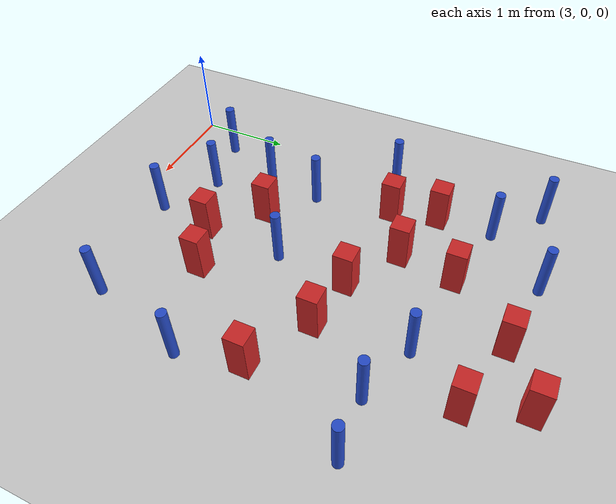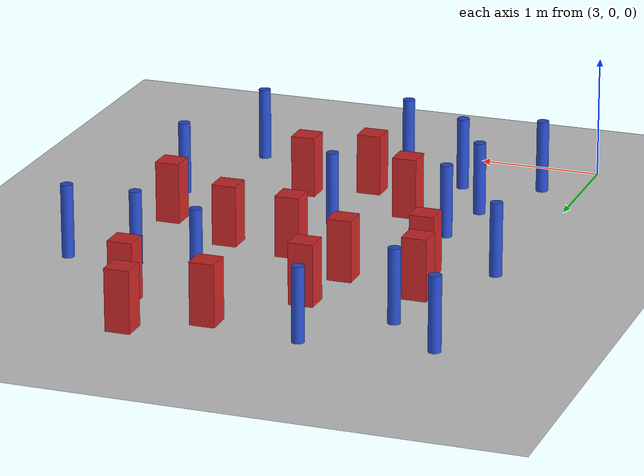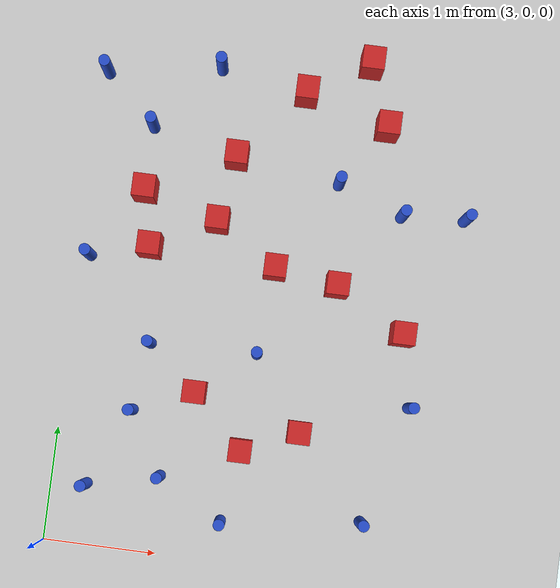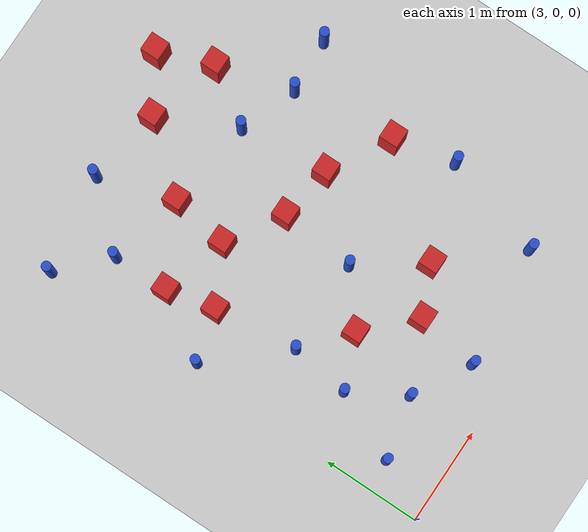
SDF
<sdf version="1.6">
 <world name="default">
  <model name="ground_plane">
   <static>1</static>
   <link name="link">
    <collision name="collision">
     <geometry><plane><normal>0 0 1</normal><size>100 100</size></plane></geometry>
     <surface><friction><ode><mu>100</mu><mu2>50</mu2></ode></friction></surface>
    </collision>
    <visual name="visual">
     <cast_shadows>0</cast_shadows>
     <geometry><plane><normal>0 0 1</normal><size>100 100</size></plane></geometry>
     <material>
      <ambient>1.0 1.0 1.0 1.0</ambient>
      <diffuse>0.8 0.8 0.8 1.0</diffuse>
      <specular>0.01 0.01 0.01 1.000000</specular>
     </material>
    </visual>
   </link>
  </model>
  <model name="pole_obstacle0">
   <static>true</static>
   <pose>5.79565178209 3.24629329432 7.38925637345e-09 -8.47170692798e-08 1.24976764937e-08 -1.74513093023e-07</pose>
   <link name="link">
    <pose>0 0 0.3 0 -0 0</pose>
    <inertial>
     <mass>1</mass>
     <inertia><ixx>0.145833</ixx><ixy>0</ixy><ixz>0</ixz><iyy>0.145833</iyy><iyz>0</iyz><izz>0.125</izz></inertia>
    </inertial>
    <collision name="collision">
     <geometry><cylinder><radius>0.05</radius><length>.6</length></cylinder></geometry>
    </collision>
    <visual name="visual">
     <geometry><cylinder><radius>0.05</radius><length>.6</length></cylinder></geometry>
     <material>
      <script><name>Gazebo/Blue</name><uri>file://media/materials/scripts/gazebo.material</uri></script>
     </material>
    </visual>
   </link>
  </model>
  <model name="square_post_obstacle17">
   <static>true</static>
   <pose>5.35984486681 4.55833261002 1.91545236811e-07 -7.35059704564e-06 1.12565212e-07 2.39332434364e-05</pose>
   <link name="link">
    <pose>0 0 0.25 0 -0 0</pose>
    <inertial>
     <mass>100</mass>
     <inertia>
      <ixx>0.166667</ixx>
      <ixy>0</ixy>
      <ixz>0</ixz>
      <iyy>0.166667</iyy>
      <iyz>0</iyz>
      <izz>0.166667</izz>
     </inertia>
    </inertial>
    <collision name="collision"><geometry><box><size>.2 .2 .5</size></box></geometry></collision>
    <visual name="visual">
     <geometry><box><size>.2 .2 .5</size></box></geometry>
     <material>
      <script><name>Gazebo/Red</name><uri>file://media/materials/scripts/gazebo.material</uri></script>
     </material>
    </visual>
   </link>
  </model>
  <model name="pole_obstacle40">
   <static>true</static>
   <pose>6.35808091005 3.28109023277 7.38925637345e-09 -8.47170692798e-08 1.24976764937e-08 -1.74513093023e-07</pose>
   <link name="link">
    <pose>0 0 0.3 0 -0 0</pose>
    <inertial>
     <mass>1</mass>
     <inertia><ixx>0.145833</ixx><ixy>0</ixy><ixz>0</ixz><iyy>0.145833</iyy><iyz>0</iyz><izz>0.125</izz></inertia>
    </inertial>
    <collision name="collision">
     <geometry><cylinder><radius>0.05</radius><length>.6</length></cylinder></geometry>
    </collision>
    <visual name="visual">
     <geometry><cylinder><radius>0.05</radius><length>.6</length></cylinder></geometry>
     <material>
      <script><name>Gazebo/Blue</name><uri>file://media/materials/scripts/gazebo.material</uri></script>
     </material>
    </visual>
   </link>
  </model>
  <model name="pole_obstacle46">
   <static>true</static>
   <pose>4.03932747048 4.36891801935 7.38925637345e-09 -8.47170692796e-08 1.24976764793e-08 -1.74513093032e-07</pose>
   <link name="link">
    <pose>0 0 0.3 0 -0 0</pose>
    <inertial>
     <mass>1</mass>
     <inertia><ixx>0.145833</ixx><ixy>0</ixy><ixz>0</ixz><iyy>0.145833</iyy><iyz>0</iyz><izz>0.125</izz></inertia>
    </inertial>
    <collision name="collision">
     <geometry><cylinder><radius>0.05</radius><length>.6</length></cylinder></geometry>
    </collision>
    <visual name="visual">
     <geometry><cylinder><radius>0.05</radius><length>.6</length></cylinder></geometry>
     <material>
      <script><name>Gazebo/Blue</name><uri>file://media/materials/scripts/gazebo.material</uri></script>
     </material>
    </visual>
   </link>
  </model>
  <model name="square_post_obstacle41">
   <static>true</static>
   <pose>5.1234105773 1.2262654958 1.91545236811e-07 -7.35059704564e-06 1.12565212e-07 2.39332434364e-05</pose>
   <link name="link">
    <pose>0 0 0.25 0 -0 0</pose>
    <inertial>
     <mass>100</mass>
     <inertia>
      <ixx>0.166667</ixx>
      <ixy>0</ixy>
      <ixz>0</ixz>
      <iyy>0.166667</iyy>
      <iyz>0</iyz>
      <izz>0.166667</izz>
     </inertia>
    </inertial>
    <collision name="collision"><geometry><box><size>.2 .2 .5</size></box></geometry></collision>
    <visual name="visual">
     <geometry><box><size>.2 .2 .5</size></box></geometry>
     <material>
      <script><name>Gazebo/Red</name><uri>file://media/materials/scripts/gazebo.material</uri></script>
     </material>
    </visual>
   </link>
  </model>
  <model name="pole_obstacle61">
   <static>true</static>
   <pose>5.76309242376 0.512502309645 7.38925637345e-09 -8.471706928e-08 1.24976765164e-08 -1.74513093012e-07</pose>
   <link name="link">
    <pose>0 0 0.3 0 -0 0</pose>
    <inertial>
     <mass>1</mass>
     <inertia><ixx>0.145833</ixx><ixy>0</ixy><ixz>0</ixz><iyy>0.145833</iyy><iyz>0</iyz><izz>0.125</izz></inertia>
    </inertial>
    <collision name="collision">
     <geometry><cylinder><radius>0.05</radius><length>.6</length></cylinder></geometry>
    </collision>
    <visual name="visual">
     <geometry><cylinder><radius>0.05</radius><length>.6</length></cylinder></geometry>
     <material>
      <script><name>Gazebo/Blue</name><uri>file://media/materials/scripts/gazebo.material</uri></script>
     </material>
    </visual>
   </link>
  </model>
  <model name="square_post_obstacle48">
   <static>true</static>
   <pose>4.17831034952 2.99418077874 1.91545236811e-07 -7.35059704564e-06 1.12565212e-07 2.39332434364e-05</pose>
   <link name="link">
    <pose>0 0 0.25 0 -0 0</pose>
    <inertial>
     <mass>100</mass>
     <inertia>
      <ixx>0.166667</ixx>
      <ixy>0</ixy>
      <ixz>0</ixz>
      <iyy>0.166667</iyy>
      <iyz>0</iyz>
      <izz>0.166667</izz>
     </inertia>
    </inertial>
    <collision name="collision"><geometry><box><size>.2 .2 .5</size></box></geometry></collision>
    <visual name="visual">
     <geometry><box><size>.2 .2 .5</size></box></geometry>
     <material>
      <script><name>Gazebo/Red</name><uri>file://media/materials/scripts/gazebo.material</uri></script>
     </material>
    </visual>
   </link>
  </model>
  <model name="pole_obstacle70">
   <static>true</static>
   <pose>3.31954316364 0.541795663118 7.38925637345e-09 -8.471706928e-08 1.24976765147e-08 -1.74513093014e-07</pose>
   <link name="link">
    <pose>0 0 0.3 0 -0 0</pose>
    <inertial>
     <mass>1</mass>
     <inertia><ixx>0.145833</ixx><ixy>0</ixy><ixz>0</ixz><iyy>0.145833</iyy><iyz>0</iyz><izz>0.125</izz></inertia>
    </inertial>
    <collision name="collision">
     <geometry><cylinder><radius>0.05</radius><length>.6</length></cylinder></geometry>
    </collision>
    <visual name="visual">
     <geometry><cylinder><radius>0.05</radius><length>.6</length></cylinder></geometry>
     <material>
      <script><name>Gazebo/Blue</name><uri>file://media/materials/scripts/gazebo.material</uri></script>
     </material>
    </visual>
   </link>
  </model>
  <model name="pole_obstacle71">
   <static>true</static>
   <pose>3.08557280857 2.55786393119 7.38925637345e-09 -8.47170692798e-08 1.24976764939e-08 -1.74513093025e-07</pose>
   <link name="link">
    <pose>0 0 0.3 0 -0 0</pose>
    <inertial>
     <mass>1</mass>
     <inertia><ixx>0.145833</ixx><ixy>0</ixy><ixz>0</ixz><iyy>0.145833</iyy><iyz>0</iyz><izz>0.125</izz></inertia>
    </inertial>
    <collision name="collision">
     <geometry><cylinder><radius>0.05</radius><length>.6</length></cylinder></geometry>
    </collision>
    <visual name="visual">
     <geometry><cylinder><radius>0.05</radius><length>.6</length></cylinder></geometry>
     <material>
      <script><name>Gazebo/Blue</name><uri>file://media/materials/scripts/gazebo.material</uri></script>
     </material>
    </visual>
   </link>
  </model>
  <model name="pole_obstacle72">
   <static>true</static>
   <pose>3.72161464787 1.84509760989 7.38925637345e-09 -8.471706928e-08 1.24976765152e-08 -1.74513093012e-07</pose>
   <link name="link">
    <pose>0 0 0.3 0 -0 0</pose>
    <inertial>
     <mass>1</mass>
     <inertia><ixx>0.145833</ixx><ixy>0</ixy><ixz>0</ixz><iyy>0.145833</iyy><iyz>0</iyz><izz>0.125</izz></inertia>
    </inertial>
    <collision name="collision">
     <geometry><cylinder><radius>0.05</radius><length>.6</length></cylinder></geometry>
    </collision>
    <visual name="visual">
     <geometry><cylinder><radius>0.05</radius><length>.6</length></cylinder></geometry>
     <material>
      <script><name>Gazebo/Blue</name><uri>file://media/materials/scripts/gazebo.material</uri></script>
     </material>
    </visual>
   </link>
  </model>
  <model name="square_post_obstacle63">
   <static>true</static>
   <pose>4.81793300384 4.22754852804 1.91545236811e-07 -7.35059704564e-06 1.12565212e-07 2.39332434364e-05</pose>
   <link name="link">
    <pose>0 0 0.25 0 -0 0</pose>
    <inertial>
     <mass>100</mass>
     <inertia>
      <ixx>0.166667</ixx>
      <ixy>0</ixy>
      <ixz>0</ixz>
      <iyy>0.166667</iyy>
      <iyz>0</iyz>
      <izz>0.166667</izz>
     </inertia>
    </inertial>
    <collision name="collision"><geometry><box><size>.2 .2 .5</size></box></geometry></collision>
    <visual name="visual">
     <geometry><box><size>.2 .2 .5</size></box></geometry>
     <material>
      <script><name>Gazebo/Red</name><uri>file://media/materials/scripts/gazebo.material</uri></script>
     </material>
    </visual>
   </link>
  </model>
  <model name="pole_obstacle87">
   <static>true</static>
   <pose>4.53662758272 0.3645337959 7.38925637345e-09 -8.47170692798e-08 1.24976765003e-08 -1.7451309302e-07</pose>
   <link name="link">
    <pose>0 0 0.3 0 -0 0</pose>
    <inertial>
     <mass>1</mass>
     <inertia><ixx>0.145833</ixx><ixy>0</ixy><ixz>0</ixz><iyy>0.145833</iyy><iyz>0</iyz><izz>0.125</izz></inertia>
    </inertial>
    <collision name="collision">
     <geometry><cylinder><radius>0.05</radius><length>.6</length></cylinder></geometry>
    </collision>
    <visual name="visual">
     <geometry><cylinder><radius>0.05</radius><length>.6</length></cylinder></geometry>
     <material>
      <script><name>Gazebo/Blue</name><uri>file://media/materials/scripts/gazebo.material</uri></script>
     </material>
    </visual>
   </link>
  </model>
  <model name="pole_obstacle88">
   <static>true</static>
   <pose>4.67086178598 1.86783521227 7.38925637345e-09 -8.471706928e-08 1.24976765134e-08 -1.74513093015e-07</pose>
   <link name="link">
    <pose>0 0 0.3 0 -0 0</pose>
    <inertial>
     <mass>1</mass>
     <inertia><ixx>0.145833</ixx><ixy>0</ixy><ixz>0</ixz><iyy>0.145833</iyy><iyz>0</iyz><izz>0.125</izz></inertia>
    </inertial>
    <collision name="collision">
     <geometry><cylinder><radius>0.05</radius><length>.6</length></cylinder></geometry>
    </collision>
    <visual name="visual">
     <geometry><cylinder><radius>0.05</radius><length>.6</length></cylinder></geometry>
     <material>
      <script><name>Gazebo/Blue</name><uri>file://media/materials/scripts/gazebo.material</uri></script>
     </material>
    </visual>
   </link>
  </model>
  <model name="square_post_obstacle76">
   <static>true</static>
   <pose>5.5669575468 4.0092460769 1.91545236811e-07 -7.35059704564e-06 1.12565212e-07 2.39332434364e-05</pose>
   <link name="link">
    <pose>0 0 0.25 0 -0 0</pose>
    <inertial>
     <mass>100</mass>
     <inertia>
      <ixx>0.166667</ixx>
      <ixy>0</ixy>
      <ixz>0</ixz>
      <iyy>0.166667</iyy>
      <iyz>0</iyz>
      <izz>0.166667</izz>
     </inertia>
    </inertial>
    <collision name="collision"><geometry><box><size>.2 .2 .5</size></box></geometry></collision>
    <visual name="visual">
     <geometry><box><size>.2 .2 .5</size></box></geometry>
     <material>
      <script><name>Gazebo/Red</name><uri>file://media/materials/scripts/gazebo.material</uri></script>
     </material>
    </visual>
   </link>
  </model>
  <model name="square_post_obstacle78">
   <static>true</static>
   <pose>4.1712971239 1.46283462826 1.91545236811e-07 -7.35059704564e-06 1.12565212e-07 2.39332434364e-05</pose>
   <link name="link">
    <pose>0 0 0.25 0 -0 0</pose>
    <inertial>
     <mass>100</mass>
     <inertia>
      <ixx>0.166667</ixx>
      <ixy>0</ixy>
      <ixz>0</ixz>
      <iyy>0.166667</iyy>
      <iyz>0</iyz>
      <izz>0.166667</izz>
     </inertia>
    </inertial>
    <collision name="collision"><geometry><box><size>.2 .2 .5</size></box></geometry></collision>
    <visual name="visual">
     <geometry><box><size>.2 .2 .5</size></box></geometry>
     <material>
      <script><name>Gazebo/Red</name><uri>file://media/materials/scripts/gazebo.material</uri></script>
     </material>
    </visual>
   </link>
  </model>
  <model name="square_post_obstacle93">
   <static>true</static>
   <pose>5.92090708836 2.19788748319 1.91545236811e-07 -7.35059704564e-06 1.12565212e-07 2.39332434364e-05</pose>
   <link name="link">
    <pose>0 0 0.25 0 -0 0</pose>
    <inertial>
     <mass>100</mass>
     <inertia>
      <ixx>0.166667</ixx>
      <ixy>0</ixy>
      <ixz>0</ixz>
      <iyy>0.166667</iyy>
      <iyz>0</iyz>
      <izz>0.166667</izz>
     </inertia>
    </inertial>
    <collision name="collision"><geometry><box><size>.2 .2 .5</size></box></geometry></collision>
    <visual name="visual">
     <geometry><box><size>.2 .2 .5</size></box></geometry>
     <material>
      <script><name>Gazebo/Red</name><uri>file://media/materials/scripts/gazebo.material</uri></script>
     </material>
    </visual>
   </link>
  </model>
  <model name="square_post_obstacle133">
   <static>true</static>
   <pose>3.61314633003 2.69601375244 1.91545236811e-07 -7.35059704564e-06 1.12565212e-07 2.39332434364e-05</pose>
   <link name="link">
    <pose>0 0 0.25 0 -0 0</pose>
    <inertial>
     <mass>100</mass>
     <inertia>
      <ixx>0.166667</ixx>
      <ixy>0</ixy>
      <ixz>0</ixz>
      <iyy>0.166667</iyy>
      <iyz>0</iyz>
      <izz>0.166667</izz>
     </inertia>
    </inertial>
    <collision name="collision"><geometry><box><size>.2 .2 .5</size></box></geometry></collision>
    <visual name="visual">
     <geometry><box><size>.2 .2 .5</size></box></geometry>
     <material>
      <script><name>Gazebo/Red</name><uri>file://media/materials/scripts/gazebo.material</uri></script>
     </material>
    </visual>
   </link>
  </model>
  <model name="pole_obstacle152">
   <static>true</static>
   <pose>3.63840151549 1.23918178074 7.38925637345e-09 -8.471706928e-08 1.24976765152e-08 -1.74513093012e-07</pose>
   <link name="link">
    <pose>0 0 0.3 0 -0 0</pose>
    <inertial>
     <mass>1</mass>
     <inertia><ixx>0.145833</ixx><ixy>0</ixy><ixz>0</ixz><iyy>0.145833</iyy><iyz>0</iyz><izz>0.125</izz></inertia>
    </inertial>
    <collision name="collision">
     <geometry><cylinder><radius>0.05</radius><length>.6</length></cylinder></geometry>
    </collision>
    <visual name="visual">
     <geometry><cylinder><radius>0.05</radius><length>.6</length></cylinder></geometry>
     <material>
      <script><name>Gazebo/Blue</name><uri>file://media/materials/scripts/gazebo.material</uri></script>
     </material>
    </visual>
   </link>
  </model>
  <model name="pole_obstacle160">
   <static>true</static>
   <pose>3.49769047025 3.77084705179 7.38925637345e-09 -8.47170692798e-08 1.24976764939e-08 -1.74513093025e-07</pose>
   <link name="link">
    <pose>0 0 0.3 0 -0 0</pose>
    <inertial>
     <mass>1</mass>
     <inertia><ixx>0.145833</ixx><ixy>0</ixy><ixz>0</ixz><iyy>0.145833</iyy><iyz>0</iyz><izz>0.125</izz></inertia>
    </inertial>
    <collision name="collision">
     <geometry><cylinder><radius>0.05</radius><length>.6</length></cylinder></geometry>
    </collision>
    <visual name="visual">
     <geometry><cylinder><radius>0.05</radius><length>.6</length></cylinder></geometry>
     <material>
      <script><name>Gazebo/Blue</name><uri>file://media/materials/scripts/gazebo.material</uri></script>
     </material>
    </visual>
   </link>
  </model>
  <model name="pole_obstacle162">
   <static>true</static>
   <pose>3.95597797329 0.689983834419 7.38925637345e-09 -8.471706928e-08 1.24976765197e-08 -1.74513093011e-07</pose>
   <link name="link">
    <pose>0 0 0.3 0 -0 0</pose>
    <inertial>
     <mass>1</mass>
     <inertia><ixx>0.145833</ixx><ixy>0</ixy><ixz>0</ixz><iyy>0.145833</iyy><iyz>0</iyz><izz>0.125</izz></inertia>
    </inertial>
    <collision name="collision">
     <geometry><cylinder><radius>0.05</radius><length>.6</length></cylinder></geometry>
    </collision>
    <visual name="visual">
     <geometry><cylinder><radius>0.05</radius><length>.6</length></cylinder></geometry>
     <material>
      <script><name>Gazebo/Blue</name><uri>file://media/materials/scripts/gazebo.material</uri></script>
     </material>
    </visual>
   </link>
  </model>
  <model name="pole_obstacle163">
   <static>true</static>
   <pose>3.03412758927 4.21098841876 7.38925637345e-09 -8.47170692798e-08 1.24976765033e-08 -1.74513093019e-07</pose>
   <link name="link">
    <pose>0 0 0.3 0 -0 0</pose>
    <inertial>
     <mass>1</mass>
     <inertia><ixx>0.145833</ixx><ixy>0</ixy><ixz>0</ixz><iyy>0.145833</iyy><iyz>0</iyz><izz>0.125</izz></inertia>
    </inertial>
    <collision name="collision">
     <geometry><cylinder><radius>0.05</radius><length>.6</length></cylinder></geometry>
    </collision>
    <visual name="visual">
     <geometry><cylinder><radius>0.05</radius><length>.6</length></cylinder></geometry>
     <material>
      <script><name>Gazebo/Blue</name><uri>file://media/materials/scripts/gazebo.material</uri></script>
     </material>
    </visual>
   </link>
  </model>
  <model name="square_post_obstacle173">
   <static>true</static>
   <pose>4.73627132165 2.64170982437 1.91545236811e-07 -7.35059704564e-06 1.12565212e-07 2.39332434364e-05</pose>
   <link name="link">
    <pose>0 0 0.25 0 -0 0</pose>
    <inertial>
     <mass>100</mass>
     <inertia>
      <ixx>0.166667</ixx>
      <ixy>0</ixy>
      <ixz>0</ixz>
      <iyy>0.166667</iyy>
      <iyz>0</iyz>
      <izz>0.166667</izz>
     </inertia>
    </inertial>
    <collision name="collision"><geometry><box><size>.2 .2 .5</size></box></geometry></collision>
    <visual name="visual">
     <geometry><box><size>.2 .2 .5</size></box></geometry>
     <material>
      <script><name>Gazebo/Red</name><uri>file://media/materials/scripts/gazebo.material</uri></script>
     </material>
    </visual>
   </link>
  </model>
  <model name="pole_obstacle178">
   <static>true</static>
   <pose>6.06681580017 1.56288946759 7.38925637345e-09 -8.471706928e-08 1.24976765134e-08 -1.74513093015e-07</pose>
   <link name="link">
    <pose>0 0 0.3 0 -0 0</pose>
    <inertial>
     <mass>1</mass>
     <inertia><ixx>0.145833</ixx><ixy>0</ixy><ixz>0</ixz><iyy>0.145833</iyy><iyz>0</iyz><izz>0.125</izz></inertia>
    </inertial>
    <collision name="collision">
     <geometry><cylinder><radius>0.05</radius><length>.6</length></cylinder></geometry>
    </collision>
    <visual name="visual">
     <geometry><cylinder><radius>0.05</radius><length>.6</length></cylinder></geometry>
     <material>
      <script><name>Gazebo/Blue</name><uri>file://media/materials/scripts/gazebo.material</uri></script>
     </material>
    </visual>
   </link>
  </model>
  <model name="square_post_obstacle193">
   <static>true</static>
   <pose>4.63312527328 1.00726321167 1.91545236811e-07 -7.35059704564e-06 1.12565212e-07 2.39332434364e-05</pose>
   <link name="link">
    <pose>0 0 0.25 0 -0 0</pose>
    <inertial>
     <mass>100</mass>
     <inertia>
      <ixx>0.166667</ixx>
      <ixy>0</ixy>
      <ixz>0</ixz>
      <iyy>0.166667</iyy>
      <iyz>0</iyz>
      <izz>0.166667</izz>
     </inertia>
    </inertial>
    <collision name="collision"><geometry><box><size>.2 .2 .5</size></box></geometry></collision>
    <visual name="visual">
     <geometry><box><size>.2 .2 .5</size></box></geometry>
     <material>
      <script><name>Gazebo/Red</name><uri>file://media/materials/scripts/gazebo.material</uri></script>
     </material>
    </visual>
   </link>
  </model>
  <model name="square_post_obstacle201">
   <static>true</static>
   <pose>5.297460387 2.55423966566 1.91545236811e-07 -7.35059704564e-06 1.12565212e-07 2.39332434364e-05</pose>
   <link name="link">
    <pose>0 0 0.25 0 -0 0</pose>
    <inertial>
     <mass>100</mass>
     <inertia>
      <ixx>0.166667</ixx>
      <ixy>0</ixy>
      <ixz>0</ixz>
      <iyy>0.166667</iyy>
      <iyz>0</iyz>
      <izz>0.166667</izz>
     </inertia>
    </inertial>
    <collision name="collision"><geometry><box><size>.2 .2 .5</size></box></geometry></collision>
    <visual name="visual">
     <geometry><box><size>.2 .2 .5</size></box></geometry>
     <material>
      <script><name>Gazebo/Red</name><uri>file://media/materials/scripts/gazebo.material</uri></script>
     </material>
    </visual>
   </link>
  </model>
  <model name="pole_obstacle197">
   <static>true</static>
   <pose>5.20477295822 3.46475944156 7.38925637345e-09 -8.47170692798e-08 1.24976764937e-08 -1.74513093023e-07</pose>
   <link name="link">
    <pose>0 0 0.3 0 -0 0</pose>
    <inertial>
     <mass>1</mass>
     <inertia><ixx>0.145833</ixx><ixy>0</ixy><ixz>0</ixz><iyy>0.145833</iyy><iyz>0</iyz><izz>0.125</izz></inertia>
    </inertial>
    <collision name="collision">
     <geometry><cylinder><radius>0.05</radius><length>.6</length></cylinder></geometry>
    </collision>
    <visual name="visual">
     <geometry><cylinder><radius>0.05</radius><length>.6</length></cylinder></geometry>
     <material>
      <script><name>Gazebo/Blue</name><uri>file://media/materials/scripts/gazebo.material</uri></script>
     </material>
    </visual>
   </link>
  </model>
  <model name="square_post_obstacle214">
   <static>true</static>
   <pose>3.50704050266 3.18822274583 1.91545236811e-07 -7.35059704564e-06 1.12565212e-07 2.39332434364e-05</pose>
   <link name="link">
    <pose>0 0 0.25 0 -0 0</pose>
    <inertial>
     <mass>100</mass>
     <inertia>
      <ixx>0.166667</ixx>
      <ixy>0</ixy>
      <ixz>0</ixz>
      <iyy>0.166667</iyy>
      <iyz>0</iyz>
      <izz>0.166667</izz>
     </inertia>
    </inertial>
    <collision name="collision"><geometry><box><size>.2 .2 .5</size></box></geometry></collision>
    <visual name="visual">
     <geometry><box><size>.2 .2 .5</size></box></geometry>
     <material>
      <script><name>Gazebo/Red</name><uri>file://media/materials/scripts/gazebo.material</uri></script>
     </material>
    </visual>
   </link>
  </model>
  <model name="square_post_obstacle215">
   <static>true</static>
   <pose>4.27379233243 3.58449752563 1.91545236811e-07 -7.35059704564e-06 1.12565212e-07 2.39332434364e-05</pose>
   <link name="link">
    <pose>0 0 0.25 0 -0 0</pose>
    <inertial>
     <mass>100</mass>
     <inertia>
      <ixx>0.166667</ixx>
      <ixy>0</ixy>
      <ixz>0</ixz>
      <iyy>0.166667</iyy>
      <iyz>0</iyz>
      <izz>0.166667</izz>
     </inertia>
    </inertial>
    <collision name="collision"><geometry><box><size>.2 .2 .5</size></box></geometry></collision>
    <visual name="visual">
     <geometry><box><size>.2 .2 .5</size></box></geometry>
     <material>
      <script><name>Gazebo/Red</name><uri>file://media/materials/scripts/gazebo.material</uri></script>
     </material>
    </visual>
   </link>
  </model>
 </world>
</sdf>
